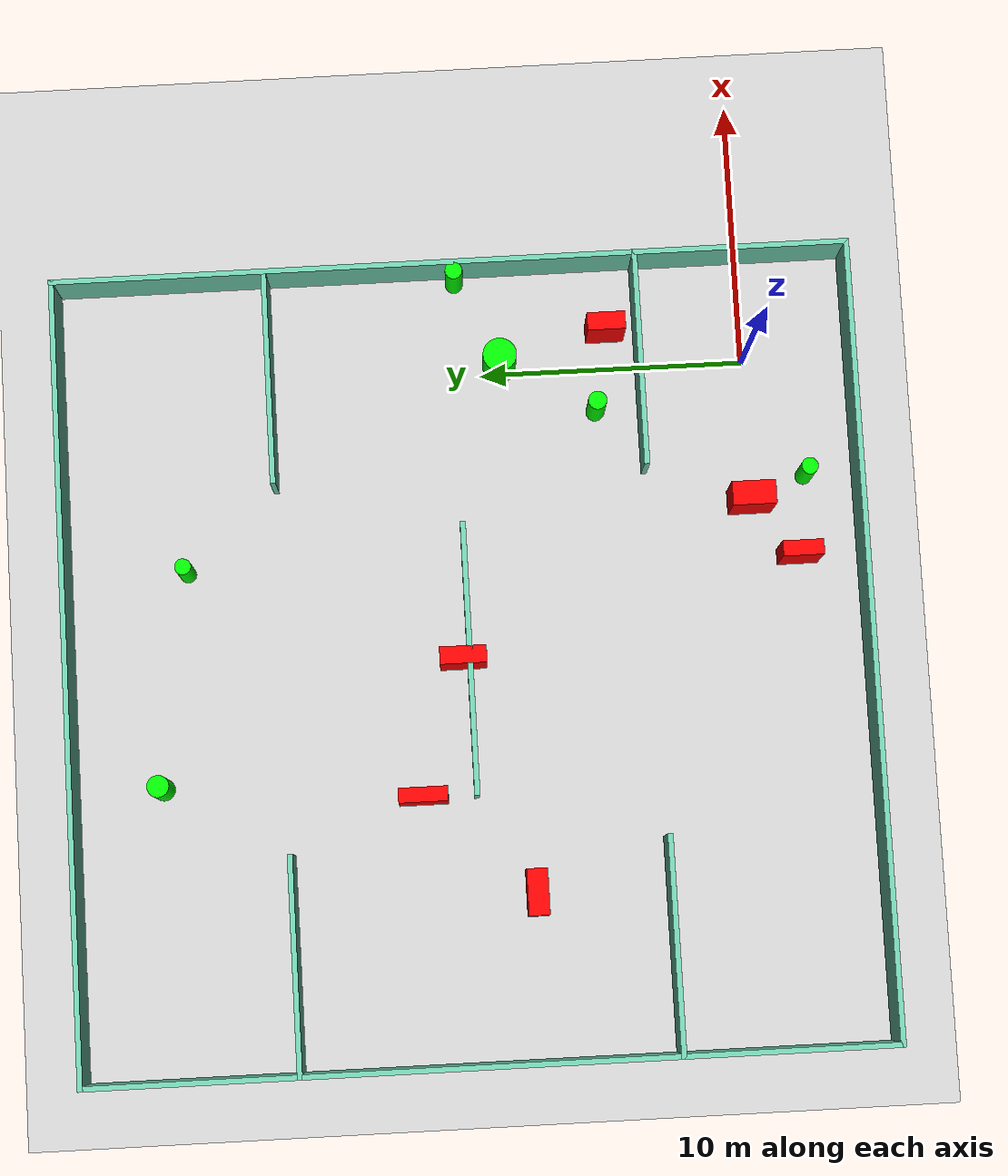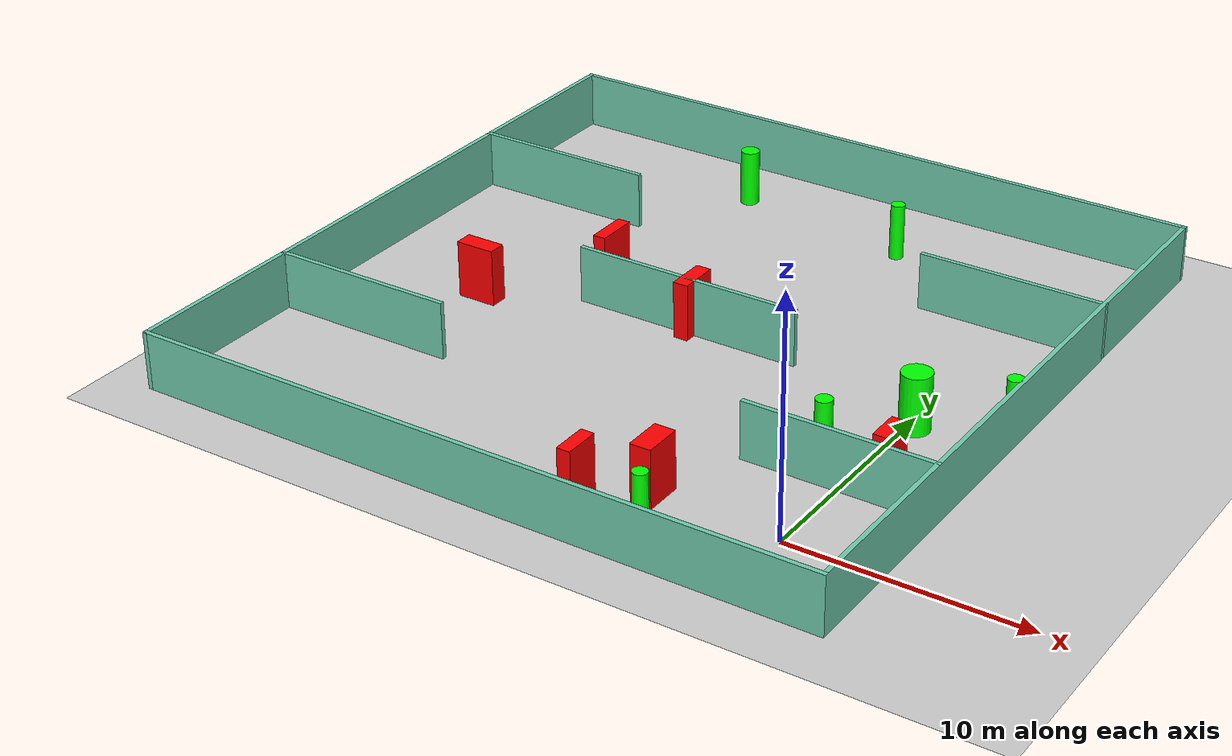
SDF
<sdf version="1.7">
 <world name="default">
  <light name="sun" type="directional">
   <pose>0 0 10 0 -0 0</pose>
   <diffuse>0.8 0.8 0.8 1</diffuse>
   <specular>0.2 0.2 0.2 1</specular>
   <attenuation>
    <range>1000</range>
    <constant>0.9</constant>
    <linear>0.01</linear>
    <quadratic>0.001</quadratic>
   </attenuation>
   <direction>-0.5 0.1 -0.9</direction>
   <spot><inner_angle>0</inner_angle><outer_angle>0</outer_angle><falloff>0</falloff></spot>
  </light>
  <model name="ground_plane">
   <static>1</static>
   <link name="link">
    <collision name="collision">
     <geometry><plane><normal>0 0 1</normal><size>100 100</size></plane></geometry>
     <surface>
      <contact><collide_bitmask>65535</collide_bitmask></contact>
      <friction><ode><mu>100</mu><mu2>50</mu2></ode></friction>
     </surface>
    </collision>
    <visual name="visual">
     <cast_shadows>0</cast_shadows>
     <geometry><plane><normal>0 0 1</normal><size>100 100</size></plane></geometry>
     <material>
      <script><uri>file://media/materials/scripts/gazebo.material</uri><name>Gazebo/Grey</name></script>
     </material>
    </visual>
   </link>
  </model>
  <gravity>0 0 -9.8</gravity>
  <magnetic_field>6e-06 2.3e-05 -4.2e-05</magnetic_field>
  <atmosphere type="adiabatic"/>
  <physics type="ode">
   <max_step_size>0.001</max_step_size>
   <real_time_factor>1</real_time_factor>
   <real_time_update_rate>1000</real_time_update_rate>
  </physics>
  <scene><ambient>0.4 0.4 0.4 1</ambient><background>0.7 0.7 0.7 1</background><shadows>1</shadows></scene>
  <spherical_coordinates>
   <surface_model>EARTH_WGS84</surface_model>
   <latitude_deg>0</latitude_deg>
   <longitude_deg>0</longitude_deg>
   <elevation>0</elevation>
   <heading_deg>0</heading_deg>
  </spherical_coordinates>
  <model name="my_base_walls">
   <link name="Wall_10">
    <collision name="Wall_10_Collision">
     <geometry><box><size>8.2 0.2 2.5</size></box></geometry>
     <pose>0 0 1.25 0 -0 0</pose>
    </collision>
    <visual name="Wall_10_Visual">
     <pose>0 0 1.25 0 -0 0</pose>
     <geometry><box><size>8.2 0.2 2.5</size></box></geometry>
     <material>
      <script><uri>file://media/materials/scripts/gazebo.material</uri><name>Gazebo/Grey</name></script>
      <ambient>0.435294 0.796078 0.67451 1</ambient>
     </material>
     <meta><layer>0</layer></meta>
    </visual>
    <pose>-11 -7 0 0 -0 0</pose>
   </link>
   <link name="Wall_12">
    <collision name="Wall_12_Collision">
     <geometry><box><size>8.2 0.2 2.5</size></box></geometry>
     <pose>0 0 1.25 0 -0 0</pose>
    </collision>
    <visual name="Wall_12_Visual">
     <pose>0 0 1.25 0 -0 0</pose>
     <geometry><box><size>8.2 0.2 2.5</size></box></geometry>
     <material>
      <script><uri>file://media/materials/scripts/gazebo.material</uri><name>Gazebo/Grey</name></script>
      <ambient>0.435294 0.796078 0.67451 1</ambient>
     </material>
     <meta><layer>0</layer></meta>
    </visual>
    <pose>-11 7 0 0 -0 0</pose>
   </link>
   <link name="Wall_14">
    <collision name="Wall_14_Collision">
     <geometry><box><size>8.2 0.2 2.5</size></box></geometry>
     <pose>0 0 1.25 0 -0 0</pose>
    </collision>
    <visual name="Wall_14_Visual">
     <pose>0 0 1.25 0 -0 0</pose>
     <geometry><box><size>8.2 0.2 2.5</size></box></geometry>
     <material>
      <script><uri>file://media/materials/scripts/gazebo.material</uri><name>Gazebo/Grey</name></script>
      <ambient>0.435294 0.796078 0.67451 1</ambient>
     </material>
     <meta><layer>0</layer></meta>
    </visual>
    <pose>11 7 0 0 -0 3.14159</pose>
   </link>
   <link name="Wall_16">
    <collision name="Wall_16_Collision">
     <geometry><box><size>10.2 0.2 2.5</size></box></geometry>
     <pose>0 0 1.25 0 -0 0</pose>
    </collision>
    <visual name="Wall_16_Visual">
     <pose>0 0 1.25 0 -0 0</pose>
     <geometry><box><size>10.2 0.2 2.5</size></box></geometry>
     <material>
      <script><uri>file://media/materials/scripts/gazebo.material</uri><name>Gazebo/Grey</name></script>
      <ambient>0.435294 0.796078 0.67451 1</ambient>
     </material>
     <meta><layer>0</layer></meta>
    </visual>
    <pose>0 0 0 0 -0 3.14159</pose>
   </link>
   <link name="Wall_2">
    <collision name="Wall_2_Collision">
     <geometry><box><size>30.2 0.2 2.5</size></box></geometry>
     <pose>0 0 1.25 0 -0 0</pose>
    </collision>
    <visual name="Wall_2_Visual">
     <pose>0 0 1.25 0 -0 0</pose>
     <geometry><box><size>30.2 0.2 2.5</size></box></geometry>
     <material>
      <script><uri>file://media/materials/scripts/gazebo.material</uri><name>Gazebo/Grey</name></script>
      <ambient>0.435294 0.796078 0.67451 1</ambient>
     </material>
     <meta><layer>0</layer></meta>
    </visual>
    <pose>0 -15 0 0 -0 3.14159</pose>
   </link>
   <link name="Wall_3">
    <collision name="Wall_3_Collision">
     <geometry><box><size>30.2 0.2 2.5</size></box></geometry>
     <pose>0 0 1.25 0 -0 0</pose>
    </collision>
    <visual name="Wall_3_Visual">
     <pose>0 0 1.25 0 -0 0</pose>
     <geometry><box><size>30.2 0.2 2.5</size></box></geometry>
     <material>
      <script><uri>file://media/materials/scripts/gazebo.material</uri><name>Gazebo/Grey</name></script>
      <ambient>0.435294 0.796078 0.67451 1</ambient>
     </material>
     <meta><layer>0</layer></meta>
    </visual>
    <pose>-15 0 0 0 -0 1.5708</pose>
   </link>
   <link name="Wall_4">
    <collision name="Wall_4_Collision">
     <geometry><box><size>30.2 0.2 2.5</size></box></geometry>
     <pose>0 0 1.25 0 -0 0</pose>
    </collision>
    <visual name="Wall_4_Visual">
     <pose>0 0 1.25 0 -0 0</pose>
     <geometry><box><size>30.2 0.2 2.5</size></box></geometry>
     <material>
      <script><uri>file://media/materials/scripts/gazebo.material</uri><name>Gazebo/Grey</name></script>
      <ambient>0.435294 0.796078 0.67451 1</ambient>
     </material>
     <meta><layer>0</layer></meta>
    </visual>
    <pose>0 15 0 0 -0 0</pose>
   </link>
   <link name="Wall_6">
    <collision name="Wall_6_Collision">
     <geometry><box><size>30.2 0.2 2.5</size></box></geometry>
     <pose>0 0 1.25 0 -0 0</pose>
    </collision>
    <visual name="Wall_6_Visual">
     <pose>0 0 1.25 0 -0 0</pose>
     <geometry><box><size>30.2 0.2 2.5</size></box></geometry>
     <material>
      <script><uri>file://media/materials/scripts/gazebo.material</uri><name>Gazebo/Grey</name></script>
      <ambient>0.435294 0.796078 0.67451 1</ambient>
     </material>
     <meta><layer>0</layer></meta>
    </visual>
    <pose>15 0 0 0 -0 1.5708</pose>
   </link>
   <link name="Wall_8">
    <collision name="Wall_8_Collision">
     <geometry><box><size>8.2 0.2 2.5</size></box></geometry>
     <pose>0 0 1.25 0 -0 0</pose>
    </collision>
    <visual name="Wall_8_Visual">
     <pose>0 0 1.25 0 -0 0</pose>
     <geometry><box><size>8.2 0.2 2.5</size></box></geometry>
     <material>
      <script><uri>file://media/materials/scripts/gazebo.material</uri><name>Gazebo/Grey</name></script>
      <ambient>0.435294 0.796078 0.67451 1</ambient>
     </material>
     <meta><layer>0</layer></meta>
    </visual>
    <pose>11 -7 0 0 -0 3.14159</pose>
   </link>
   <static>1</static>
   <pose>-11 11 0 0 -0 0</pose>
  </model>
  <model name="cylinder1">
   <static>1</static>
   <link name="link">
    <inertial>
     <mass>1</mass>
     <inertia><ixx>0.5</ixx><ixy>0</ixy><ixz>0</ixz><iyy>0.5</iyy><iyz>0</iyz><izz>1</izz></inertia>
    </inertial>
    <collision name="collision">
     <geometry><cylinder><radius>0.32732594644120444</radius><length>2.5</length></cylinder></geometry>
    </collision>
    <visual name="visual">
     <geometry><cylinder><radius>0.32732594644120444</radius><length>2.5</length></cylinder></geometry>
     <material>
      <ambient>0 1 0 1</ambient>
      <diffuse>0 1 0 1</diffuse>
      <specular>0.1 0.1 0.1 1</specular>
      <emissive>0 0 0 0</emissive>
     </material>
    </visual>
   </link>
   <pose>3.647358162818744 10.836093985359842 1.25 0 0 0</pose>
  </model>
  <model name="cylinder2">
   <static>1</static>
   <link name="link">
    <inertial>
     <mass>1</mass>
     <inertia><ixx>0.5</ixx><ixy>0</ixy><ixz>0</ixz><iyy>0.5</iyy><iyz>0</iyz><izz>1</izz></inertia>
    </inertial>
    <collision name="collision">
     <geometry><cylinder><radius>0.3147049793127961</radius><length>2.5</length></cylinder></geometry>
    </collision>
    <visual name="visual">
     <geometry><cylinder><radius>0.3147049793127961</radius><length>2.5</length></cylinder></geometry>
     <material>
      <ambient>0 1 0 1</ambient>
      <diffuse>0 1 0 1</diffuse>
      <specular>0.1 0.1 0.1 1</specular>
      <emissive>0 0 0 0</emissive>
     </material>
    </visual>
   </link>
   <pose>-4.508049254563222 -2.0688476334929473 1.25 0 0 0</pose>
  </model>
  <model name="cylinder3">
   <static>1</static>
   <link name="link">
    <inertial>
     <mass>1</mass>
     <inertia><ixx>0.5</ixx><ixy>0</ixy><ixz>0</ixz><iyy>0.5</iyy><iyz>0</iyz><izz>1</izz></inertia>
    </inertial>
    <collision name="collision">
     <geometry><cylinder><radius>0.3500386151411925</radius><length>2.5</length></cylinder></geometry>
    </collision>
    <visual name="visual">
     <geometry><cylinder><radius>0.3500386151411925</radius><length>2.5</length></cylinder></geometry>
     <material>
      <ambient>0 1 0 1</ambient>
      <diffuse>0 1 0 1</diffuse>
      <specular>0.1 0.1 0.1 1</specular>
      <emissive>0 0 0 0</emissive>
     </material>
    </visual>
   </link>
   <pose>-1.6004153955283407 5.704871870677437 1.25 0 0 0</pose>
  </model>
  <model name="cylinder4">
   <static>1</static>
   <link name="link">
    <inertial>
     <mass>1</mass>
     <inertia><ixx>0.5</ixx><ixy>0</ixy><ixz>0</ixz><iyy>0.5</iyy><iyz>0</iyz><izz>1</izz></inertia>
    </inertial>
    <collision name="collision">
     <geometry><cylinder><radius>0.3059605847727117</radius><length>2.5</length></cylinder></geometry>
    </collision>
    <visual name="visual">
     <geometry><cylinder><radius>0.3059605847727117</radius><length>2.5</length></cylinder></geometry>
     <material>
      <ambient>0 1 0 1</ambient>
      <diffuse>0 1 0 1</diffuse>
      <specular>0.1 0.1 0.1 1</specular>
      <emissive>0 0 0 0</emissive>
     </material>
    </visual>
   </link>
   <pose>-7.05755162985419 21.48287047819947 1.25 0 0 0</pose>
  </model>
  <model name="cylinder5">
   <static>1</static>
   <link name="link">
    <inertial>
     <mass>1</mass>
     <inertia><ixx>0.5</ixx><ixy>0</ixy><ixz>0</ixz><iyy>0.5</iyy><iyz>0</iyz><izz>1</izz></inertia>
    </inertial>
    <collision name="collision">
     <geometry><cylinder><radius>0.6347255528264366</radius><length>2.5</length></cylinder></geometry>
    </collision>
    <visual name="visual">
     <geometry><cylinder><radius>0.6347255528264366</radius><length>2.5</length></cylinder></geometry>
     <material>
      <ambient>0 1 0 1</ambient>
      <diffuse>0 1 0 1</diffuse>
      <specular>0.1 0.1 0.1 1</specular>
      <emissive>0 0 0 0</emissive>
     </material>
    </visual>
   </link>
   <pose>0.34007176505203063 9.275297212971633 1.25 0 0 0</pose>
  </model>
  <model name="cylinder6">
   <static>1</static>
   <link name="link">
    <inertial>
     <mass>1</mass>
     <inertia><ixx>0.5</ixx><ixy>0</ixy><ixz>0</ixz><iyy>0.5</iyy><iyz>0</iyz><izz>1</izz></inertia>
    </inertial>
    <collision name="collision">
     <geometry><cylinder><radius>0.41286422769751263</radius><length>2.5</length></cylinder></geometry>
    </collision>
    <visual name="visual">
     <geometry><cylinder><radius>0.41286422769751263</radius><length>2.5</length></cylinder></geometry>
     <material>
      <ambient>0 1 0 1</ambient>
      <diffuse>0 1 0 1</diffuse>
      <specular>0.1 0.1 0.1 1</specular>
      <emissive>0 0 0 0</emissive>
     </material>
    </visual>
   </link>
   <pose>-15.16096265353714 22.73254148292206 1.25 0 0 0</pose>
  </model>
  <model name="box1">
   <static>1</static>
   <link name="link">
    <inertial>
     <mass>1</mass>
     <inertia><ixx>0.083</ixx><ixy>0</ixy><ixz>0</ixz><iyy>0.083</iyy><iyz>0</iyz><izz>0.083</izz></inertia>
    </inertial>
    <collision name="collision">
     <geometry><box><size>0.6531082161982859 1.7512210689212802 2.5</size></box></geometry>
    </collision>
    <visual name="visual">
     <geometry><box><size>0.6531082161982859 1.7512210689212802 2.5</size></box></geometry>
     <material>
      <ambient>1 0 0 1</ambient>
      <diffuse>1 0 0 1</diffuse>
      <specular>0.1 0.1 0.1 1</specular>
      <emissive>0 0 0 0</emissive>
     </material>
    </visual>
    <sensor name="my_contact" type="contact">
     <contact><collision>box_collision</collision><topic>__default_topic__</topic></contact>
    </sensor>
   </link>
   <pose>-10.882549741287528 11.246497802760196 1.25 0 0 0</pose>
  </model>
  <model name="box2">
   <static>1</static>
   <link name="link">
    <inertial>
     <mass>1</mass>
     <inertia><ixx>0.083</ixx><ixy>0</ixy><ixz>0</ixz><iyy>0.083</iyy><iyz>0</iyz><izz>0.083</izz></inertia>
    </inertial>
    <collision name="collision">
     <geometry><box><size>0.5782129147402243 1.531695517024617 2.5</size></box></geometry>
    </collision>
    <visual name="visual">
     <geometry><box><size>0.5782129147402243 1.531695517024617 2.5</size></box></geometry>
     <material>
      <ambient>1 0 0 1</ambient>
      <diffuse>1 0 0 1</diffuse>
      <specular>0.1 0.1 0.1 1</specular>
      <emissive>0 0 0 0</emissive>
     </material>
    </visual>
    <sensor name="my_contact" type="contact">
     <contact><collision>box_collision</collision><topic>__default_topic__</topic></contact>
    </sensor>
   </link>
   <pose>-7.5652306148338475 -1.6211736970989374 1.25 0 0 0</pose>
  </model>
  <model name="box3">
   <static>1</static>
   <link name="link">
    <inertial>
     <mass>1</mass>
     <inertia><ixx>0.083</ixx><ixy>0</ixy><ixz>0</ixz><iyy>0.083</iyy><iyz>0</iyz><izz>0.083</izz></inertia>
    </inertial>
    <collision name="collision">
     <geometry><box><size>0.5548979644674086 1.8369694427403989 2.5</size></box></geometry>
    </collision>
    <visual name="visual">
     <geometry><box><size>0.5548979644674086 1.8369694427403989 2.5</size></box></geometry>
     <material>
      <ambient>1 0 0 1</ambient>
      <diffuse>1 0 0 1</diffuse>
      <specular>0.1 0.1 0.1 1</specular>
      <emissive>0 0 0 0</emissive>
     </material>
    </visual>
    <sensor name="my_contact" type="contact">
     <contact><collision>box_collision</collision><topic>__default_topic__</topic></contact>
    </sensor>
   </link>
   <pose>-15.973103832293265 12.992540008355867 1.25 0 0 0</pose>
  </model>
  <model name="box4">
   <static>1</static>
   <link name="link">
    <inertial>
     <mass>1</mass>
     <inertia><ixx>0.083</ixx><ixy>0</ixy><ixz>0</ixz><iyy>0.083</iyy><iyz>0</iyz><izz>0.083</izz></inertia>
    </inertial>
    <collision name="collision">
     <geometry><box><size>0.6699030928314859 1.4353988998032545 2.5</size></box></geometry>
    </collision>
    <visual name="visual">
     <geometry><box><size>0.6699030928314859 1.4353988998032545 2.5</size></box></geometry>
     <material>
      <ambient>1 0 0 1</ambient>
      <diffuse>1 0 0 1</diffuse>
      <specular>0.1 0.1 0.1 1</specular>
      <emissive>0 0 0 0</emissive>
     </material>
    </visual>
    <sensor name="my_contact" type="contact">
     <contact><collision>box_collision</collision><topic>__default_topic__</topic></contact>
    </sensor>
   </link>
   <pose>1.4247203334549745 5.20259043504543 1.25 0 0 0</pose>
  </model>
  <model name="box5">
   <static>1</static>
   <link name="link">
    <inertial>
     <mass>1</mass>
     <inertia><ixx>0.083</ixx><ixy>0</ixy><ixz>0</ixz><iyy>0.083</iyy><iyz>0</iyz><izz>0.083</izz></inertia>
    </inertial>
    <collision name="collision">
     <geometry><box><size>0.8980982444929901 1.639053714423228 2.5</size></box></geometry>
    </collision>
    <visual name="visual">
     <geometry><box><size>0.8980982444929901 1.639053714423228 2.5</size></box></geometry>
     <material>
      <ambient>1 0 0 1</ambient>
      <diffuse>1 0 0 1</diffuse>
      <specular>0.1 0.1 0.1 1</specular>
      <emissive>0 0 0 0</emissive>
     </material>
    </visual>
    <sensor name="my_contact" type="contact">
     <contact><collision>box_collision</collision><topic>__default_topic__</topic></contact>
    </sensor>
   </link>
   <pose>-5.393583458063047 0.06941624639364141 1.25 0 0 0</pose>
  </model>
  <model name="box6">
   <static>1</static>
   <link name="link">
    <inertial>
     <mass>1</mass>
     <inertia><ixx>0.083</ixx><ixy>0</ixy><ixz>0</ixz><iyy>0.083</iyy><iyz>0</iyz><izz>0.083</izz></inertia>
    </inertial>
    <collision name="collision">
     <geometry><box><size>1.731070587242498 0.7807586661450624 2.5</size></box></geometry>
    </collision>
    <visual name="visual">
     <geometry><box><size>1.731070587242498 0.7807586661450624 2.5</size></box></geometry>
     <material>
      <ambient>1 0 0 1</ambient>
      <diffuse>1 0 0 1</diffuse>
      <specular>0.1 0.1 0.1 1</specular>
      <emissive>0 0 0 0</emissive>
     </material>
    </visual>
    <sensor name="my_contact" type="contact">
     <contact><collision>box_collision</collision><topic>__default_topic__</topic></contact>
    </sensor>
   </link>
   <pose>-19.761371701252372 8.957943152776362 1.25 0 0 0</pose>
  </model>
 </world>
</sdf>
